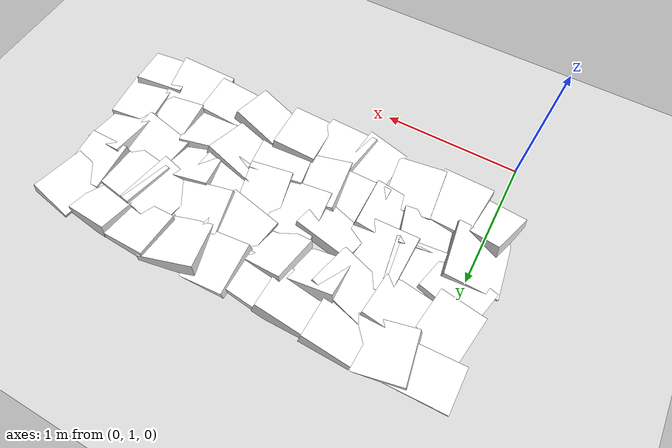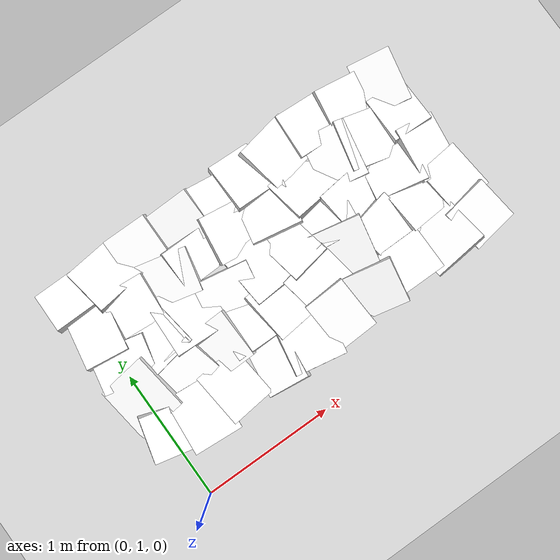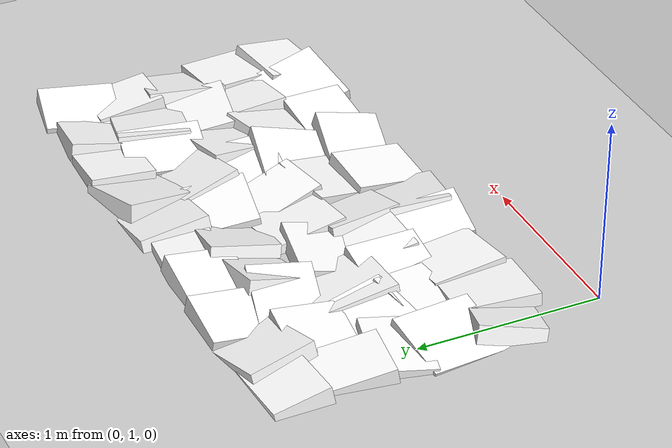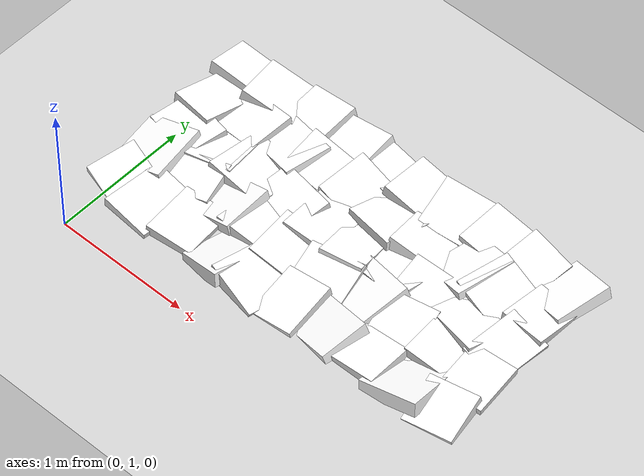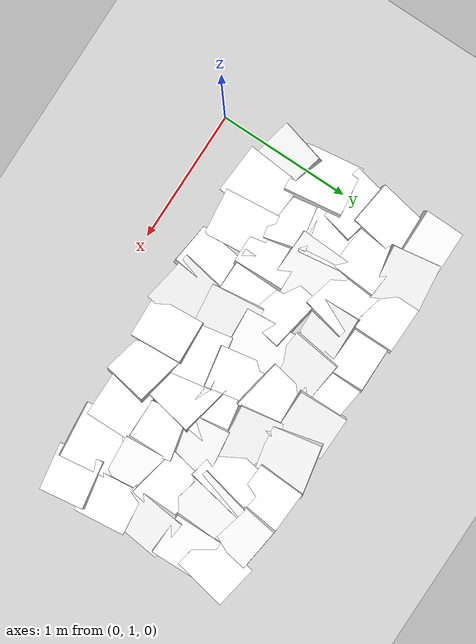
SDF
<sdf version="1.7">
 <world name="default">
  <include><uri>model://sun</uri></include>
  <include><uri>model://ground_plane</uri></include>
  <model name="static_environment">
   <static>true</static>
   <link name="region_50">
    <pose>0.02578742538390976 1.5208920845397782 0.0 0.17056147400995397 0.22714431827816384 -0.24875878686595176</pose>
    <collision name="region_50_collision">
     <geometry><box><size>0.37847539892627924 0.3487585205415195 0.1</size></box></geometry>
     <surface><friction><ode><mu>1.0</mu><mu2>1.0</mu2></ode></friction></surface>
    </collision>
    <visual name="region_50_visual">
     <geometry><box><size>0.37847539892627924 0.3487585205415195 0.1</size></box></geometry>
     <material><ambient>1.0 1.0 1.0 1.0</ambient><diffuse>1.0 1.0 1.0 1.0</diffuse></material>
    </visual>
   </link>
   <link name="region_51">
    <pose>0.2780656055893883 1.4846996483048502 0.0 0.0025309602885705274 0.08921075491094133 -0.0836200211915254</pose>
    <collision name="region_51_collision">
     <geometry><box><size>0.3738178650345941 0.4406869678596905 0.1</size></box></geometry>
     <surface><friction><ode><mu>1.0</mu><mu2>1.0</mu2></ode></friction></surface>
    </collision>
    <visual name="region_51_visual">
     <geometry><box><size>0.3738178650345941 0.4406869678596905 0.1</size></box></geometry>
     <material><ambient>1.0 1.0 1.0 1.0</ambient><diffuse>1.0 1.0 1.0 1.0</diffuse></material>
    </visual>
   </link>
   <link name="region_52">
    <pose>0.5719712362937068 1.5171478717513038 0.0 -0.03572985926989536 0.06450472858428019 0.10275151245339986</pose>
    <collision name="region_52_collision">
     <geometry><box><size>0.34595470073850104 0.4163696866832323 0.1</size></box></geometry>
     <surface><friction><ode><mu>1.0</mu><mu2>1.0</mu2></ode></friction></surface>
    </collision>
    <visual name="region_52_visual">
     <geometry><box><size>0.34595470073850104 0.4163696866832323 0.1</size></box></geometry>
     <material><ambient>1.0 1.0 1.0 1.0</ambient><diffuse>1.0 1.0 1.0 1.0</diffuse></material>
    </visual>
   </link>
   <link name="region_53">
    <pose>0.9193387481170646 1.4925228862352249 0.0 -0.1526028357520704 -0.2185972809720803 -0.09569553692989263</pose>
    <collision name="region_53_collision">
     <geometry><box><size>0.31477029441321264 0.435576924731233 0.1</size></box></geometry>
     <surface><friction><ode><mu>1.0</mu><mu2>1.0</mu2></ode></friction></surface>
    </collision>
    <visual name="region_53_visual">
     <geometry><box><size>0.31477029441321264 0.435576924731233 0.1</size></box></geometry>
     <material><ambient>1.0 1.0 1.0 1.0</ambient><diffuse>1.0 1.0 1.0 1.0</diffuse></material>
    </visual>
   </link>
   <link name="region_54">
    <pose>1.1895952980730344 1.4832173931964692 0.0 -0.08630290817672959 0.23218341815287424 -0.20195464991148454</pose>
    <collision name="region_54_collision">
     <geometry><box><size>0.40697879409030835 0.42197725742698394 0.1</size></box></geometry>
     <surface><friction><ode><mu>1.0</mu><mu2>1.0</mu2></ode></friction></surface>
    </collision>
    <visual name="region_54_visual">
     <geometry><box><size>0.40697879409030835 0.42197725742698394 0.1</size></box></geometry>
     <material><ambient>1.0 1.0 1.0 1.0</ambient><diffuse>1.0 1.0 1.0 1.0</diffuse></material>
    </visual>
   </link>
   <link name="region_55">
    <pose>1.478385809942866 1.4859975535577876 0.0 0.15158793622903838 -0.09969410807081686 0.048508274435627385</pose>
    <collision name="region_55_collision">
     <geometry><box><size>0.32432751714659086 0.40413586784291405 0.1</size></box></geometry>
     <surface><friction><ode><mu>1.0</mu><mu2>1.0</mu2></ode></friction></surface>
    </collision>
    <visual name="region_55_visual">
     <geometry><box><size>0.32432751714659086 0.40413586784291405 0.1</size></box></geometry>
     <material><ambient>1.0 1.0 1.0 1.0</ambient><diffuse>1.0 1.0 1.0 1.0</diffuse></material>
    </visual>
   </link>
   <link name="region_56">
    <pose>1.7849240573335579 1.4873805294397209 0.0 0.18797003621201563 -0.2406209266146176 -0.20418179394384856</pose>
    <collision name="region_56_collision">
     <geometry><box><size>0.3859218431648035 0.3398165207368003 0.1</size></box></geometry>
     <surface><friction><ode><mu>1.0</mu><mu2>1.0</mu2></ode></friction></surface>
    </collision>
    <visual name="region_56_visual">
     <geometry><box><size>0.3859218431648035 0.3398165207368003 0.1</size></box></geometry>
     <material><ambient>1.0 1.0 1.0 1.0</ambient><diffuse>1.0 1.0 1.0 1.0</diffuse></material>
    </visual>
   </link>
   <link name="region_57">
    <pose>2.103771443934943 1.5023676656744596 0.0 -0.0023189985978371297 -0.09962346499832292 0.00572436266910159</pose>
    <collision name="region_57_collision">
     <geometry><box><size>0.3511814938731378 0.3330452482679476 0.1</size></box></geometry>
     <surface><friction><ode><mu>1.0</mu><mu2>1.0</mu2></ode></friction></surface>
    </collision>
    <visual name="region_57_visual">
     <geometry><box><size>0.3511814938731378 0.3330452482679476 0.1</size></box></geometry>
     <material><ambient>1.0 1.0 1.0 1.0</ambient><diffuse>1.0 1.0 1.0 1.0</diffuse></material>
    </visual>
   </link>
   <link name="region_58">
    <pose>2.4019704532497506 1.518380112864631 0.0 -0.23286226019517742 -0.17296693955024506 0.12409251383433795</pose>
    <collision name="region_58_collision">
     <geometry><box><size>0.417934277512733 0.421875837223832 0.1</size></box></geometry>
     <surface><friction><ode><mu>1.0</mu><mu2>1.0</mu2></ode></friction></surface>
    </collision>
    <visual name="region_58_visual">
     <geometry><box><size>0.417934277512733 0.421875837223832 0.1</size></box></geometry>
     <material><ambient>1.0 1.0 1.0 1.0</ambient><diffuse>1.0 1.0 1.0 1.0</diffuse></material>
    </visual>
   </link>
   <link name="region_59">
    <pose>2.7043205287780188 1.4923452309081828 0.0 0.20476495499573105 -0.056514387488515894 0.1681245977086373</pose>
    <collision name="region_59_collision">
     <geometry><box><size>0.3577304845833424 0.3476847735293015 0.1</size></box></geometry>
     <surface><friction><ode><mu>1.0</mu><mu2>1.0</mu2></ode></friction></surface>
    </collision>
    <visual name="region_59_visual">
     <geometry><box><size>0.3577304845833424 0.3476847735293015 0.1</size></box></geometry>
     <material><ambient>1.0 1.0 1.0 1.0</ambient><diffuse>1.0 1.0 1.0 1.0</diffuse></material>
    </visual>
   </link>
   <link name="region_60">
    <pose>-0.0009567855387194943 1.827510843995741 0.0 0.03835483022647562 -0.2361278510069562 0.11943542460883566</pose>
    <collision name="region_60_collision">
     <geometry><box><size>0.3902645580141332 0.43680281661634485 0.1</size></box></geometry>
     <surface><friction><ode><mu>1.0</mu><mu2>1.0</mu2></ode></friction></surface>
    </collision>
    <visual name="region_60_visual">
     <geometry><box><size>0.3902645580141332 0.43680281661634485 0.1</size></box></geometry>
     <material><ambient>1.0 1.0 1.0 1.0</ambient><diffuse>1.0 1.0 1.0 1.0</diffuse></material>
    </visual>
   </link>
   <link name="region_61">
    <pose>0.32780658245067434 1.8038055621660982 0.0 0.12035095546885932 -0.1379993409936489 0.22059124784373574</pose>
    <collision name="region_61_collision">
     <geometry><box><size>0.4292101194873496 0.3147825014105176 0.1</size></box></geometry>
     <surface><friction><ode><mu>1.0</mu><mu2>1.0</mu2></ode></friction></surface>
    </collision>
    <visual name="region_61_visual">
     <geometry><box><size>0.4292101194873496 0.3147825014105176 0.1</size></box></geometry>
     <material><ambient>1.0 1.0 1.0 1.0</ambient><diffuse>1.0 1.0 1.0 1.0</diffuse></material>
    </visual>
   </link>
   <link name="region_62">
    <pose>0.6276834118305403 1.8034181239599996 0.0 0.015834195972767695 -0.22761651897348756 0.023194484982145602</pose>
    <collision name="region_62_collision">
     <geometry><box><size>0.3964992688943809 0.3814977956899509 0.1</size></box></geometry>
     <surface><friction><ode><mu>1.0</mu><mu2>1.0</mu2></ode></friction></surface>
    </collision>
    <visual name="region_62_visual">
     <geometry><box><size>0.3964992688943809 0.3814977956899509 0.1</size></box></geometry>
     <material><ambient>1.0 1.0 1.0 1.0</ambient><diffuse>1.0 1.0 1.0 1.0</diffuse></material>
    </visual>
   </link>
   <link name="region_63">
    <pose>0.9107595608148732 1.803846468713038 0.0 -0.1460124918084862 0.023406961560787753 -0.01200562956037271</pose>
    <collision name="region_63_collision">
     <geometry><box><size>0.4116541333992663 0.35526048450480185 0.1</size></box></geometry>
     <surface><friction><ode><mu>1.0</mu><mu2>1.0</mu2></ode></friction></surface>
    </collision>
    <visual name="region_63_visual">
     <geometry><box><size>0.4116541333992663 0.35526048450480185 0.1</size></box></geometry>
     <material><ambient>1.0 1.0 1.0 1.0</ambient><diffuse>1.0 1.0 1.0 1.0</diffuse></material>
    </visual>
   </link>
   <link name="region_64">
    <pose>1.1736692261155999 1.7923662855371536 0.0 -0.03294532655726701 0.236933810728587 0.09909967728517655</pose>
    <collision name="region_64_collision">
     <geometry><box><size>0.3506579431059235 0.3993952800952321 0.1</size></box></geometry>
     <surface><friction><ode><mu>1.0</mu><mu2>1.0</mu2></ode></friction></surface>
    </collision>
    <visual name="region_64_visual">
     <geometry><box><size>0.3506579431059235 0.3993952800952321 0.1</size></box></geometry>
     <material><ambient>1.0 1.0 1.0 1.0</ambient><diffuse>1.0 1.0 1.0 1.0</diffuse></material>
    </visual>
   </link>
   <link name="region_65">
    <pose>1.49610554558344 1.7922741059336627 0.0 0.22019877509230668 -0.023591184408961574 0.17754999346122358</pose>
    <collision name="region_65_collision">
     <geometry><box><size>0.39386829301941656 0.32339167686915216 0.1</size></box></geometry>
     <surface><friction><ode><mu>1.0</mu><mu2>1.0</mu2></ode></friction></surface>
    </collision>
    <visual name="region_65_visual">
     <geometry><box><size>0.39386829301941656 0.32339167686915216 0.1</size></box></geometry>
     <material><ambient>1.0 1.0 1.0 1.0</ambient><diffuse>1.0 1.0 1.0 1.0</diffuse></material>
    </visual>
   </link>
   <link name="region_66">
    <pose>1.7702001266879446 1.8254872941766032 0.0 0.22564687713990478 -0.17253224165332398 -0.21714466197050913</pose>
    <collision name="region_66_collision">
     <geometry><box><size>0.3980417777119509 0.4318930433125731 0.1</size></box></geometry>
     <surface><friction><ode><mu>1.0</mu><mu2>1.0</mu2></ode></friction></surface>
    </collision>
    <visual name="region_66_visual">
     <geometry><box><size>0.3980417777119509 0.4318930433125731 0.1</size></box></geometry>
     <material><ambient>1.0 1.0 1.0 1.0</ambient><diffuse>1.0 1.0 1.0 1.0</diffuse></material>
    </visual>
   </link>
   <link name="region_67">
    <pose>2.1014478807026933 1.7961073571247104 0.0 0.20633857625710483 0.034988325996275105 0.21706837434714066</pose>
    <collision name="region_67_collision">
     <geometry><box><size>0.34759250362365707 0.3878333174816368 0.1</size></box></geometry>
     <surface><friction><ode><mu>1.0</mu><mu2>1.0</mu2></ode></friction></surface>
    </collision>
    <visual name="region_67_visual">
     <geometry><box><size>0.34759250362365707 0.3878333174816368 0.1</size></box></geometry>
     <material><ambient>1.0 1.0 1.0 1.0</ambient><diffuse>1.0 1.0 1.0 1.0</diffuse></material>
    </visual>
   </link>
   <link name="region_68">
    <pose>2.428924722533201 1.8299101956246662 0.0 -0.026765945833224225 0.13121527915136005 0.06828170909229081</pose>
    <collision name="region_68_collision">
     <geometry><box><size>0.3864231531084103 0.3277770291224299 0.1</size></box></geometry>
     <surface><friction><ode><mu>1.0</mu><mu2>1.0</mu2></ode></friction></surface>
    </collision>
    <visual name="region_68_visual">
     <geometry><box><size>0.3864231531084103 0.3277770291224299 0.1</size></box></geometry>
     <material><ambient>1.0 1.0 1.0 1.0</ambient><diffuse>1.0 1.0 1.0 1.0</diffuse></material>
    </visual>
   </link>
   <link name="region_69">
    <pose>2.709254516077865 1.805624422211737 0.0 0.020738319496750257 0.045939534267891824 0.10449558614678894</pose>
    <collision name="region_69_collision">
     <geometry><box><size>0.3277865962369647 0.3868802940102354 0.1</size></box></geometry>
     <surface><friction><ode><mu>1.0</mu><mu2>1.0</mu2></ode></friction></surface>
    </collision>
    <visual name="region_69_visual">
     <geometry><box><size>0.3277865962369647 0.3868802940102354 0.1</size></box></geometry>
     <material><ambient>1.0 1.0 1.0 1.0</ambient><diffuse>1.0 1.0 1.0 1.0</diffuse></material>
    </visual>
   </link>
   <link name="region_70">
    <pose>0.02480972942479679 2.0969775003034647 0.0 0.09831055790559734 -0.056180475416640285 -0.2244714256226199</pose>
    <collision name="region_70_collision">
     <geometry><box><size>0.41564669604919663 0.31335752944466316 0.1</size></box></geometry>
     <surface><friction><ode><mu>1.0</mu><mu2>1.0</mu2></ode></friction></surface>
    </collision>
    <visual name="region_70_visual">
     <geometry><box><size>0.41564669604919663 0.31335752944466316 0.1</size></box></geometry>
     <material><ambient>1.0 1.0 1.0 1.0</ambient><diffuse>1.0 1.0 1.0 1.0</diffuse></material>
    </visual>
   </link>
   <link name="region_71">
    <pose>0.3031667976078867 2.0859953904334367 0.0 -0.148061959664047 -0.10189752309373495 0.1709338162959998</pose>
    <collision name="region_71_collision">
     <geometry><box><size>0.3995461886428877 0.35484908462232984 0.1</size></box></geometry>
     <surface><friction><ode><mu>1.0</mu><mu2>1.0</mu2></ode></friction></surface>
    </collision>
    <visual name="region_71_visual">
     <geometry><box><size>0.3995461886428877 0.35484908462232984 0.1</size></box></geometry>
     <material><ambient>1.0 1.0 1.0 1.0</ambient><diffuse>1.0 1.0 1.0 1.0</diffuse></material>
    </visual>
   </link>
   <link name="region_72">
    <pose>0.5948598568419733 2.116391194165813 0.0 -0.1659734397047573 0.12212794557818935 -0.03789684076692973</pose>
    <collision name="region_72_collision">
     <geometry><box><size>0.43860227875109287 0.44678753814004546 0.1</size></box></geometry>
     <surface><friction><ode><mu>1.0</mu><mu2>1.0</mu2></ode></friction></surface>
    </collision>
    <visual name="region_72_visual">
     <geometry><box><size>0.43860227875109287 0.44678753814004546 0.1</size></box></geometry>
     <material><ambient>1.0 1.0 1.0 1.0</ambient><diffuse>1.0 1.0 1.0 1.0</diffuse></material>
    </visual>
   </link>
   <link name="region_73">
    <pose>0.9191349324835373 2.0743395193868106 0.0 0.1730538558760853 -0.03817553178085337 -0.17962932229149153</pose>
    <collision name="region_73_collision">
     <geometry><box><size>0.4266138133753315 0.32955303885895915 0.1</size></box></geometry>
     <surface><friction><ode><mu>1.0</mu><mu2>1.0</mu2></ode></friction></surface>
    </collision>
    <visual name="region_73_visual">
     <geometry><box><size>0.4266138133753315 0.32955303885895915 0.1</size></box></geometry>
     <material><ambient>1.0 1.0 1.0 1.0</ambient><diffuse>1.0 1.0 1.0 1.0</diffuse></material>
    </visual>
   </link>
   <link name="region_74">
    <pose>1.1967770980472288 2.083995861529353 0.0 -0.1306172524417667 0.09658662650148858 0.07388473894717101</pose>
    <collision name="region_74_collision">
     <geometry><box><size>0.34588757263451303 0.40640429002257356 0.1</size></box></geometry>
     <surface><friction><ode><mu>1.0</mu><mu2>1.0</mu2></ode></friction></surface>
    </collision>
    <visual name="region_74_visual">
     <geometry><box><size>0.34588757263451303 0.40640429002257356 0.1</size></box></geometry>
     <material><ambient>1.0 1.0 1.0 1.0</ambient><diffuse>1.0 1.0 1.0 1.0</diffuse></material>
    </visual>
   </link>
   <link name="region_75">
    <pose>1.4784110509900432 2.084433854664694 0.0 -0.243048087407658 0.0031274176696668987 0.17546602441440262</pose>
    <collision name="region_75_collision">
     <geometry><box><size>0.30958876441199923 0.42187765491334017 0.1</size></box></geometry>
     <surface><friction><ode><mu>1.0</mu><mu2>1.0</mu2></ode></friction></surface>
    </collision>
    <visual name="region_75_visual">
     <geometry><box><size>0.30958876441199923 0.42187765491334017 0.1</size></box></geometry>
     <material><ambient>1.0 1.0 1.0 1.0</ambient><diffuse>1.0 1.0 1.0 1.0</diffuse></material>
    </visual>
   </link>
   <link name="region_76">
    <pose>1.7761649565292257 2.098458306945285 0.0 -0.10477086446846662 -0.09530135973088116 -0.12852045494803405</pose>
    <collision name="region_76_collision">
     <geometry><box><size>0.43946056262086 0.3694964661664744 0.1</size></box></geometry>
     <surface><friction><ode><mu>1.0</mu><mu2>1.0</mu2></ode></friction></surface>
    </collision>
    <visual name="region_76_visual">
     <geometry><box><size>0.43946056262086 0.3694964661664744 0.1</size></box></geometry>
     <material><ambient>1.0 1.0 1.0 1.0</ambient><diffuse>1.0 1.0 1.0 1.0</diffuse></material>
    </visual>
   </link>
   <link name="region_77">
    <pose>2.070214406007904 2.099715729747533 0.0 0.10009887357387581 0.15763515811743478 0.12669341467104156</pose>
    <collision name="region_77_collision">
     <geometry><box><size>0.4430537323369853 0.3596115493911644 0.1</size></box></geometry>
     <surface><friction><ode><mu>1.0</mu><mu2>1.0</mu2></ode></friction></surface>
    </collision>
    <visual name="region_77_visual">
     <geometry><box><size>0.4430537323369853 0.3596115493911644 0.1</size></box></geometry>
     <material><ambient>1.0 1.0 1.0 1.0</ambient><diffuse>1.0 1.0 1.0 1.0</diffuse></material>
    </visual>
   </link>
   <link name="region_78">
    <pose>2.391006322645566 2.0975683237614766 0.0 -0.1815188257566217 -0.03631126529102274 -0.19925592172696432</pose>
    <collision name="region_78_collision">
     <geometry><box><size>0.4053243398924638 0.329714344222415 0.1</size></box></geometry>
     <surface><friction><ode><mu>1.0</mu><mu2>1.0</mu2></ode></friction></surface>
    </collision>
    <visual name="region_78_visual">
     <geometry><box><size>0.4053243398924638 0.329714344222415 0.1</size></box></geometry>
     <material><ambient>1.0 1.0 1.0 1.0</ambient><diffuse>1.0 1.0 1.0 1.0</diffuse></material>
    </visual>
   </link>
   <link name="region_79">
    <pose>2.680136853505076 2.0983721047254136 0.0 0.06245619908046263 0.2194844419852353 -0.09683838724881999</pose>
    <collision name="region_79_collision">
     <geometry><box><size>0.3130883422809154 0.4254278591546904 0.1</size></box></geometry>
     <surface><friction><ode><mu>1.0</mu><mu2>1.0</mu2></ode></friction></surface>
    </collision>
    <visual name="region_79_visual">
     <geometry><box><size>0.3130883422809154 0.4254278591546904 0.1</size></box></geometry>
     <material><ambient>1.0 1.0 1.0 1.0</ambient><diffuse>1.0 1.0 1.0 1.0</diffuse></material>
    </visual>
   </link>
   <link name="region_80">
    <pose>-0.011784852135056478 2.386659184355249 0.0 -0.17493605182005179 -0.027659088878870197 -0.13426263705182445</pose>
    <collision name="region_80_collision">
     <geometry><box><size>0.327168217247337 0.431313201483937 0.1</size></box></geometry>
     <surface><friction><ode><mu>1.0</mu><mu2>1.0</mu2></ode></friction></surface>
    </collision>
    <visual name="region_80_visual">
     <geometry><box><size>0.327168217247337 0.431313201483937 0.1</size></box></geometry>
     <material><ambient>1.0 1.0 1.0 1.0</ambient><diffuse>1.0 1.0 1.0 1.0</diffuse></material>
    </visual>
   </link>
   <link name="region_81">
    <pose>0.30749325418696916 2.396742131825208 0.0 0.08897172173952927 -0.09957156549461899 -0.08880910196668979</pose>
    <collision name="region_81_collision">
     <geometry><box><size>0.3538292395117398 0.3500469865162788 0.1</size></box></geometry>
     <surface><friction><ode><mu>1.0</mu><mu2>1.0</mu2></ode></friction></surface>
    </collision>
    <visual name="region_81_visual">
     <geometry><box><size>0.3538292395117398 0.3500469865162788 0.1</size></box></geometry>
     <material><ambient>1.0 1.0 1.0 1.0</ambient><diffuse>1.0 1.0 1.0 1.0</diffuse></material>
    </visual>
   </link>
   <link name="region_82">
    <pose>0.6157716887276101 2.4119752009832016 0.0 0.07392032557655609 -0.18921920037415613 -0.2472138413667671</pose>
    <collision name="region_82_collision">
     <geometry><box><size>0.44974192952576525 0.33574108617288184 0.1</size></box></geometry>
     <surface><friction><ode><mu>1.0</mu><mu2>1.0</mu2></ode></friction></surface>
    </collision>
    <visual name="region_82_visual">
     <geometry><box><size>0.44974192952576525 0.33574108617288184 0.1</size></box></geometry>
     <material><ambient>1.0 1.0 1.0 1.0</ambient><diffuse>1.0 1.0 1.0 1.0</diffuse></material>
    </visual>
   </link>
   <link name="region_83">
    <pose>0.8845631472206147 2.4293536579057364 0.0 0.23305708769303124 0.2106623749090466 0.04163223971727942</pose>
    <collision name="region_83_collision">
     <geometry><box><size>0.41183298874971785 0.3124542748338551 0.1</size></box></geometry>
     <surface><friction><ode><mu>1.0</mu><mu2>1.0</mu2></ode></friction></surface>
    </collision>
    <visual name="region_83_visual">
     <geometry><box><size>0.41183298874971785 0.3124542748338551 0.1</size></box></geometry>
     <material><ambient>1.0 1.0 1.0 1.0</ambient><diffuse>1.0 1.0 1.0 1.0</diffuse></material>
    </visual>
   </link>
   <link name="region_84">
    <pose>1.1903843488949923 2.428041198129903 0.0 0.15798977428624356 0.24596261870550612 -0.09955914330850546</pose>
    <collision name="region_84_collision">
     <geometry><box><size>0.36843480550573654 0.36935064030175774 0.1</size></box></geometry>
     <surface><friction><ode><mu>1.0</mu><mu2>1.0</mu2></ode></friction></surface>
    </collision>
    <visual name="region_84_visual">
     <geometry><box><size>0.36843480550573654 0.36935064030175774 0.1</size></box></geometry>
     <material><ambient>1.0 1.0 1.0 1.0</ambient><diffuse>1.0 1.0 1.0 1.0</diffuse></material>
    </visual>
   </link>
   <link name="region_85">
    <pose>1.4930177492725916 2.405050680007438 0.0 -0.1517413908471143 -0.09306589794871267 -0.18252658395882232</pose>
    <collision name="region_85_collision">
     <geometry><box><size>0.38697760880347243 0.40231017917337014 0.1</size></box></geometry>
     <surface><friction><ode><mu>1.0</mu><mu2>1.0</mu2></ode></friction></surface>
    </collision>
    <visual name="region_85_visual">
     <geometry><box><size>0.38697760880347243 0.40231017917337014 0.1</size></box></geometry>
     <material><ambient>1.0 1.0 1.0 1.0</ambient><diffuse>1.0 1.0 1.0 1.0</diffuse></material>
    </visual>
   </link>
   <link name="region_86">
    <pose>1.7954901741401657 2.3928339767373474 0.0 -0.22362508446803658 0.1979269253932061 0.11373733672997838</pose>
    <collision name="region_86_collision">
     <geometry><box><size>0.396416806390799 0.3501214469716735 0.1</size></box></geometry>
     <surface><friction><ode><mu>1.0</mu><mu2>1.0</mu2></ode></friction></surface>
    </collision>
    <visual name="region_86_visual">
     <geometry><box><size>0.396416806390799 0.3501214469716735 0.1</size></box></geometry>
     <material><ambient>1.0 1.0 1.0 1.0</ambient><diffuse>1.0 1.0 1.0 1.0</diffuse></material>
    </visual>
   </link>
   <link name="region_87">
    <pose>2.110537393314779 2.429500267634955 0.0 -0.018393519080687537 -0.1951960627763924 -0.18920074498326983</pose>
    <collision name="region_87_collision">
     <geometry><box><size>0.3486049793306608 0.4348048979142806 0.1</size></box></geometry>
     <surface><friction><ode><mu>1.0</mu><mu2>1.0</mu2></ode></friction></surface>
    </collision>
    <visual name="region_87_visual">
     <geometry><box><size>0.3486049793306608 0.4348048979142806 0.1</size></box></geometry>
     <material><ambient>1.0 1.0 1.0 1.0</ambient><diffuse>1.0 1.0 1.0 1.0</diffuse></material>
    </visual>
   </link>
   <link name="region_88">
    <pose>2.3830085693664573 2.402855753909833 0.0 0.014901939361034955 0.17888816678539377 -0.22346187784362842</pose>
    <collision name="region_88_collision">
     <geometry><box><size>0.4119707410685533 0.38681215567057875 0.1</size></box></geometry>
     <surface><friction><ode><mu>1.0</mu><mu2>1.0</mu2></ode></friction></surface>
    </collision>
    <visual name="region_88_visual">
     <geometry><box><size>0.4119707410685533 0.38681215567057875 0.1</size></box></geometry>
     <material><ambient>1.0 1.0 1.0 1.0</ambient><diffuse>1.0 1.0 1.0 1.0</diffuse></material>
    </visual>
   </link>
   <link name="region_89">
    <pose>2.6783650255953693 2.4293245466326256 0.0 -0.15087371262378702 0.0598164947269606 -0.02817150799707141</pose>
    <collision name="region_89_collision">
     <geometry><box><size>0.3169577030384229 0.3663901643869537 0.1</size></box></geometry>
     <surface><friction><ode><mu>1.0</mu><mu2>1.0</mu2></ode></friction></surface>
    </collision>
    <visual name="region_89_visual">
     <geometry><box><size>0.3169577030384229 0.3663901643869537 0.1</size></box></geometry>
     <material><ambient>1.0 1.0 1.0 1.0</ambient><diffuse>1.0 1.0 1.0 1.0</diffuse></material>
    </visual>
   </link>
   <link name="region_90">
    <pose>-0.010536296158993194 2.6981863569645057 0.0 -0.19318303765225925 0.07058865471517112 0.01710732833899009</pose>
    <collision name="region_90_collision">
     <geometry><box><size>0.4172511535653965 0.3078944352752702 0.1</size></box></geometry>
     <surface><friction><ode><mu>1.0</mu><mu2>1.0</mu2></ode></friction></surface>
    </collision>
    <visual name="region_90_visual">
     <geometry><box><size>0.4172511535653965 0.3078944352752702 0.1</size></box></geometry>
     <material><ambient>1.0 1.0 1.0 1.0</ambient><diffuse>1.0 1.0 1.0 1.0</diffuse></material>
    </visual>
   </link>
   <link name="region_91">
    <pose>0.28770124818552434 2.688953528681094 0.0 -0.13217498494089042 0.21649263538995517 0.14935631190143533</pose>
    <collision name="region_91_collision">
     <geometry><box><size>0.4240212915524409 0.3663427583218395 0.1</size></box></geometry>
     <surface><friction><ode><mu>1.0</mu><mu2>1.0</mu2></ode></friction></surface>
    </collision>
    <visual name="region_91_visual">
     <geometry><box><size>0.4240212915524409 0.3663427583218395 0.1</size></box></geometry>
     <material><ambient>1.0 1.0 1.0 1.0</ambient><diffuse>1.0 1.0 1.0 1.0</diffuse></material>
    </visual>
   </link>
   <link name="region_92">
    <pose>0.576066599902599 2.7053627786678116 0.0 0.11445323756549047 -0.13602360252533835 -0.028992332424805922</pose>
    <collision name="region_92_collision">
     <geometry><box><size>0.3515187416706258 0.3674750812781262 0.1</size></box></geometry>
     <surface><friction><ode><mu>1.0</mu><mu2>1.0</mu2></ode></friction></surface>
    </collision>
    <visual name="region_92_visual">
     <geometry><box><size>0.3515187416706258 0.3674750812781262 0.1</size></box></geometry>
     <material><ambient>1.0 1.0 1.0 1.0</ambient><diffuse>1.0 1.0 1.0 1.0</diffuse></material>
    </visual>
   </link>
   <link name="region_93">
    <pose>0.9030327264488891 2.6816909553894326 0.0 0.14749909051492188 -0.19519366678621736 -0.014642640912088056</pose>
    <collision name="region_93_collision">
     <geometry><box><size>0.4012271401568108 0.3663965270892045 0.1</size></box></geometry>
     <surface><friction><ode><mu>1.0</mu><mu2>1.0</mu2></ode></friction></surface>
    </collision>
    <visual name="region_93_visual">
     <geometry><box><size>0.4012271401568108 0.3663965270892045 0.1</size></box></geometry>
     <material><ambient>1.0 1.0 1.0 1.0</ambient><diffuse>1.0 1.0 1.0 1.0</diffuse></material>
    </visual>
   </link>
   <link name="region_94">
    <pose>1.2213325787938292 2.6820117806275303 0.0 -0.015366108548876933 0.05637946341658007 -0.11519389699215438</pose>
    <collision name="region_94_collision">
     <geometry><box><size>0.34366741776696835 0.3158084796215765 0.1</size></box></geometry>
     <surface><friction><ode><mu>1.0</mu><mu2>1.0</mu2></ode></friction></surface>
    </collision>
    <visual name="region_94_visual">
     <geometry><box><size>0.34366741776696835 0.3158084796215765 0.1</size></box></geometry>
     <material><ambient>1.0 1.0 1.0 1.0</ambient><diffuse>1.0 1.0 1.0 1.0</diffuse></material>
    </visual>
   </link>
   <link name="region_95">
    <pose>1.4966890122983312 2.691789519214781 0.0 -0.12198929177637963 0.20308668907668326 0.004740051128991896</pose>
    <collision name="region_95_collision">
     <geometry><box><size>0.3719495456794191 0.37957032816435626 0.1</size></box></geometry>
     <surface><friction><ode><mu>1.0</mu><mu2>1.0</mu2></ode></friction></surface>
    </collision>
    <visual name="region_95_visual">
     <geometry><box><size>0.3719495456794191 0.37957032816435626 0.1</size></box></geometry>
     <material><ambient>1.0 1.0 1.0 1.0</ambient><diffuse>1.0 1.0 1.0 1.0</diffuse></material>
    </visual>
   </link>
   <link name="region_96">
    <pose>1.7871637368953028 2.698718683674408 0.0 0.16160694532049458 0.18799646751653437 0.22039770578125795</pose>
    <collision name="region_96_collision">
     <geometry><box><size>0.40520129132805033 0.3801021878317533 0.1</size></box></geometry>
     <surface><friction><ode><mu>1.0</mu><mu2>1.0</mu2></ode></friction></surface>
    </collision>
    <visual name="region_96_visual">
     <geometry><box><size>0.40520129132805033 0.3801021878317533 0.1</size></box></geometry>
     <material><ambient>1.0 1.0 1.0 1.0</ambient><diffuse>1.0 1.0 1.0 1.0</diffuse></material>
    </visual>
   </link>
   <link name="region_97">
    <pose>2.0771368764666596 2.7292953145034433 0.0 0.06550570749595352 0.10243742860277505 -0.03463102236912152</pose>
    <collision name="region_97_collision">
     <geometry><box><size>0.3323874289214387 0.35178232985462626 0.1</size></box></geometry>
     <surface><friction><ode><mu>1.0</mu><mu2>1.0</mu2></ode></friction></surface>
    </collision>
    <visual name="region_97_visual">
     <geometry><box><size>0.3323874289214387 0.35178232985462626 0.1</size></box></geometry>
     <material><ambient>1.0 1.0 1.0 1.0</ambient><diffuse>1.0 1.0 1.0 1.0</diffuse></material>
    </visual>
   </link>
   <link name="region_98">
    <pose>2.387321301099841 2.701944240845348 0.0 0.1581104603966908 0.1658917914822154 -0.10688989582471964</pose>
    <collision name="region_98_collision">
     <geometry><box><size>0.3365326107450202 0.35808436777578745 0.1</size></box></geometry>
     <surface><friction><ode><mu>1.0</mu><mu2>1.0</mu2></ode></friction></surface>
    </collision>
    <visual name="region_98_visual">
     <geometry><box><size>0.3365326107450202 0.35808436777578745 0.1</size></box></geometry>
     <material><ambient>1.0 1.0 1.0 1.0</ambient><diffuse>1.0 1.0 1.0 1.0</diffuse></material>
    </visual>
   </link>
   <link name="region_99">
    <pose>2.69502159128185 2.6809170946638248 0.0 0.052173468647921384 -0.19373226584612924 -0.20224119722668654</pose>
    <collision name="region_99_collision">
     <geometry><box><size>0.32663731109373045 0.40846888352870836 0.1</size></box></geometry>
     <surface><friction><ode><mu>1.0</mu><mu2>1.0</mu2></ode></friction></surface>
    </collision>
    <visual name="region_99_visual">
     <geometry><box><size>0.32663731109373045 0.40846888352870836 0.1</size></box></geometry>
     <material><ambient>1.0 1.0 1.0 1.0</ambient><diffuse>1.0 1.0 1.0 1.0</diffuse></material>
    </visual>
   </link>
  </model>
 </world>
</sdf>
